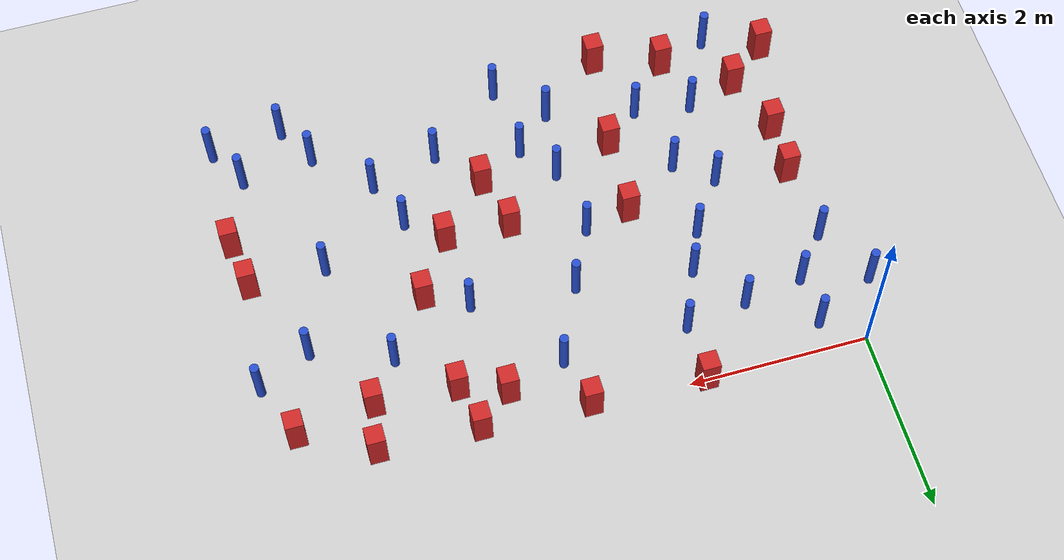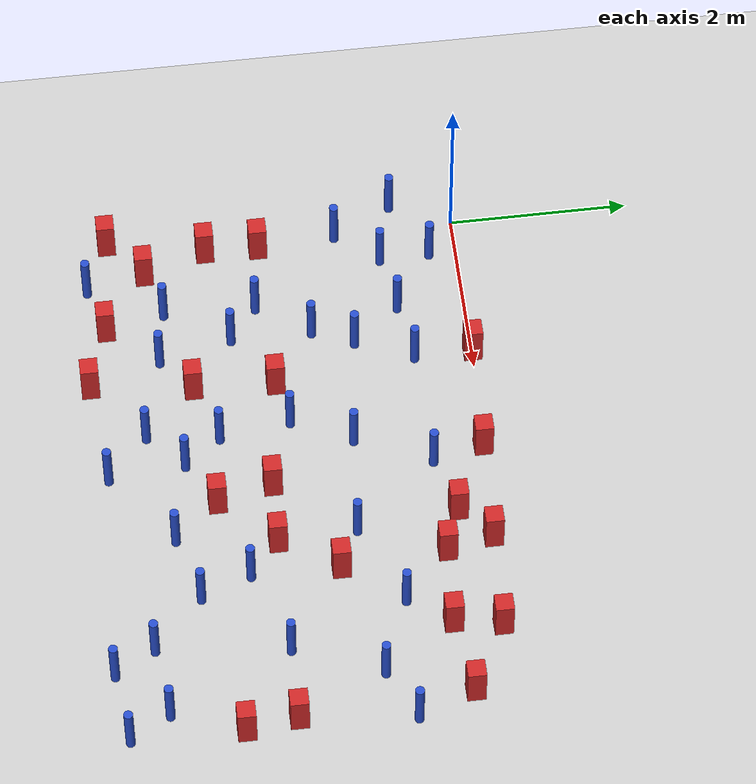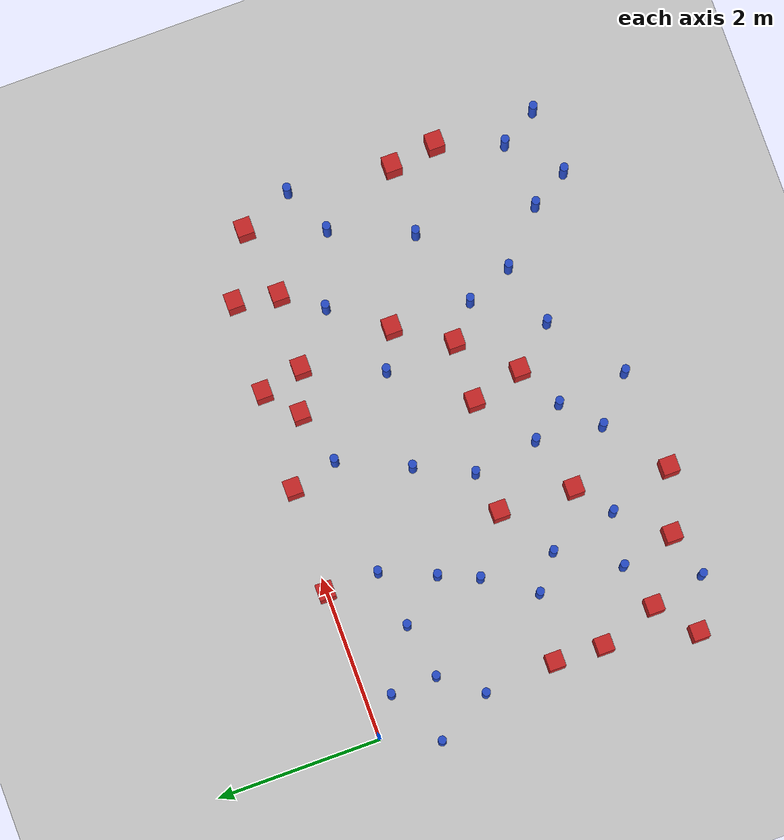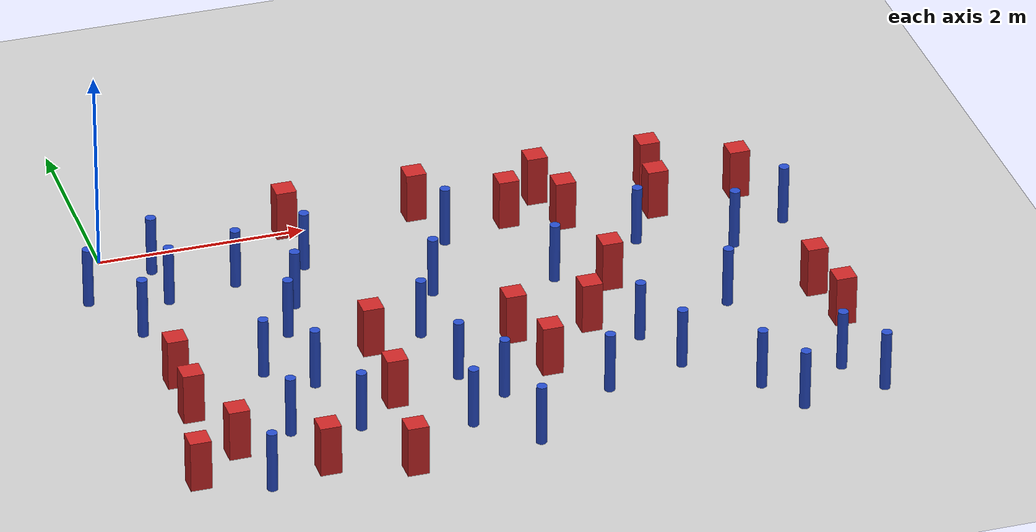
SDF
<sdf version="1.6">
 <world name="default">
  <model name="ground_plane">
   <static>1</static>
   <link name="link">
    <collision name="collision">
     <geometry><plane><normal>0 0 1</normal><size>100 100</size></plane></geometry>
     <surface><friction><ode><mu>100</mu><mu2>50</mu2></ode></friction></surface>
    </collision>
    <visual name="visual">
     <cast_shadows>0</cast_shadows>
     <geometry><plane><normal>0 0 1</normal><size>100 100</size></plane></geometry>
     <material>
      <ambient>1.0 1.0 1.0 1.0</ambient>
      <diffuse>0.8 0.8 0.8 1.0</diffuse>
      <specular>0.01 0.01 0.01 1.000000</specular>
     </material>
    </visual>
   </link>
  </model>
  <model name="NamedLocations">
   <static>true</static>
   <link name="DefaultStart"><pose>8.5 0 0 0 0 3.14</pose></link>
  </model>
  <model name="square_post_obstacle0">
   <static>true</static>
   <pose>3.33551158871 -2.38753182375 8.22691968438e-08 7.2212513382e-06 -7.54495500217e-07 2.29674213826e-05</pose>
   <link name="link">
    <pose>0 0 0.25 0 -0 0</pose>
    <inertial>
     <mass>100</mass>
     <inertia>
      <ixx>0.166667</ixx>
      <ixy>0</ixy>
      <ixz>0</ixz>
      <iyy>0.166667</iyy>
      <iyz>0</iyz>
      <izz>0.166667</izz>
     </inertia>
    </inertial>
    <collision name="collision"><geometry><box><size>.2 .2 .5</size></box></geometry></collision>
    <visual name="visual">
     <geometry><box><size>.2 .2 .5</size></box></geometry>
     <material>
      <script><name>Gazebo/Red</name><uri>file://media/materials/scripts/gazebo.material</uri></script>
     </material>
    </visual>
   </link>
  </model>
  <model name="square_post_obstacle1">
   <static>true</static>
   <pose>6.35539613358 -2.98623689507 8.22691968438e-08 7.2212513382e-06 -7.54495500217e-07 2.29674213826e-05</pose>
   <link name="link">
    <pose>0 0 0.25 0 -0 0</pose>
    <inertial>
     <mass>100</mass>
     <inertia>
      <ixx>0.166667</ixx>
      <ixy>0</ixy>
      <ixz>0</ixz>
      <iyy>0.166667</iyy>
      <iyz>0</iyz>
      <izz>0.166667</izz>
     </inertia>
    </inertial>
    <collision name="collision"><geometry><box><size>.2 .2 .5</size></box></geometry></collision>
    <visual name="visual">
     <geometry><box><size>.2 .2 .5</size></box></geometry>
     <material>
      <script><name>Gazebo/Red</name><uri>file://media/materials/scripts/gazebo.material</uri></script>
     </material>
    </visual>
   </link>
  </model>
  <model name="pole_obstacle6">
   <static>true</static>
   <pose>0.951202149608 -2.32949687447 2.88873142074e-08 -9.90536689802e-09 4.6021994899e-07 -1.2096599496e-07</pose>
   <link name="link">
    <pose>0 0 0.3 0 -0 0</pose>
    <inertial>
     <mass>1</mass>
     <inertia><ixx>0.145833</ixx><ixy>0</ixy><ixz>0</ixz><iyy>0.145833</iyy><iyz>0</iyz><izz>0.125</izz></inertia>
    </inertial>
    <collision name="collision">
     <geometry><cylinder><radius>0.05</radius><length>.6</length></cylinder></geometry>
    </collision>
    <visual name="visual">
     <geometry><cylinder><radius>0.05</radius><length>.6</length></cylinder></geometry>
     <material>
      <script><name>Gazebo/Blue</name><uri>file://media/materials/scripts/gazebo.material</uri></script>
     </material>
    </visual>
   </link>
  </model>
  <model name="pole_obstacle16">
   <static>true</static>
   <pose>4.67616366562 -3.29924647182 2.88873142074e-08 -9.90536690245e-09 4.6021994898e-07 -1.20965994966e-07</pose>
   <link name="link">
    <pose>0 0 0.3 0 -0 0</pose>
    <inertial>
     <mass>1</mass>
     <inertia><ixx>0.145833</ixx><ixy>0</ixy><ixz>0</ixz><iyy>0.145833</iyy><iyz>0</iyz><izz>0.125</izz></inertia>
    </inertial>
    <collision name="collision">
     <geometry><cylinder><radius>0.05</radius><length>.6</length></cylinder></geometry>
    </collision>
    <visual name="visual">
     <geometry><cylinder><radius>0.05</radius><length>.6</length></cylinder></geometry>
     <material>
      <script><name>Gazebo/Blue</name><uri>file://media/materials/scripts/gazebo.material</uri></script>
     </material>
    </visual>
   </link>
  </model>
  <model name="square_post_obstacle13">
   <static>true</static>
   <pose>3.08221346266 -0.0451196564456 8.22691968438e-08 7.2212513382e-06 -7.54495500217e-07 2.29674213826e-05</pose>
   <link name="link">
    <pose>0 0 0.25 0 -0 0</pose>
    <inertial>
     <mass>100</mass>
     <inertia>
      <ixx>0.166667</ixx>
      <ixy>0</ixy>
      <ixz>0</ixz>
      <iyy>0.166667</iyy>
      <iyz>0</iyz>
      <izz>0.166667</izz>
     </inertia>
    </inertial>
    <collision name="collision"><geometry><box><size>.2 .2 .5</size></box></geometry></collision>
    <visual name="visual">
     <geometry><box><size>.2 .2 .5</size></box></geometry>
     <material>
      <script><name>Gazebo/Red</name><uri>file://media/materials/scripts/gazebo.material</uri></script>
     </material>
    </visual>
   </link>
  </model>
  <model name="pole_obstacle31">
   <static>true</static>
   <pose>1.55537287279 -3.45770355366 2.88873142074e-08 -9.90536689791e-09 4.6021994899e-07 -1.20965994959e-07</pose>
   <link name="link">
    <pose>0 0 0.3 0 -0 0</pose>
    <inertial>
     <mass>1</mass>
     <inertia><ixx>0.145833</ixx><ixy>0</ixy><ixz>0</ixz><iyy>0.145833</iyy><iyz>0</iyz><izz>0.125</izz></inertia>
    </inertial>
    <collision name="collision">
     <geometry><cylinder><radius>0.05</radius><length>.6</length></cylinder></geometry>
    </collision>
    <visual name="visual">
     <geometry><cylinder><radius>0.05</radius><length>.6</length></cylinder></geometry>
     <material>
      <script><name>Gazebo/Blue</name><uri>file://media/materials/scripts/gazebo.material</uri></script>
     </material>
    </visual>
   </link>
  </model>
  <model name="pole_obstacle32">
   <static>true</static>
   <pose>6.33286366104 -4.20859407425 2.88873142074e-08 -9.90536690842e-09 4.60219948965e-07 -1.20965994976e-07</pose>
   <link name="link">
    <pose>0 0 0.3 0 -0 0</pose>
    <inertial>
     <mass>1</mass>
     <inertia><ixx>0.145833</ixx><ixy>0</ixy><ixz>0</ixz><iyy>0.145833</iyy><iyz>0</iyz><izz>0.125</izz></inertia>
    </inertial>
    <collision name="collision">
     <geometry><cylinder><radius>0.05</radius><length>.6</length></cylinder></geometry>
    </collision>
    <visual name="visual">
     <geometry><cylinder><radius>0.05</radius><length>.6</length></cylinder></geometry>
     <material>
      <script><name>Gazebo/Blue</name><uri>file://media/materials/scripts/gazebo.material</uri></script>
     </material>
    </visual>
   </link>
  </model>
  <model name="pole_obstacle34">
   <static>true</static>
   <pose>2.52904070204 -2.10784419586 2.88873142074e-08 -9.90536690232e-09 4.6021994898e-07 -1.20965994968e-07</pose>
   <link name="link">
    <pose>0 0 0.3 0 -0 0</pose>
    <inertial>
     <mass>1</mass>
     <inertia><ixx>0.145833</ixx><ixy>0</ixy><ixz>0</ixz><iyy>0.145833</iyy><iyz>0</iyz><izz>0.125</izz></inertia>
    </inertial>
    <collision name="collision">
     <geometry><cylinder><radius>0.05</radius><length>.6</length></cylinder></geometry>
    </collision>
    <visual name="visual">
     <geometry><cylinder><radius>0.05</radius><length>.6</length></cylinder></geometry>
     <material>
      <script><name>Gazebo/Blue</name><uri>file://media/materials/scripts/gazebo.material</uri></script>
     </material>
    </visual>
   </link>
  </model>
  <model name="pole_obstacle37">
   <static>true</static>
   <pose>4.01068466594 -1.53768718347 2.88873142074e-08 -9.90536692145e-09 4.60219948935e-07 -1.20965994986e-07</pose>
   <link name="link">
    <pose>0 0 0.3 0 -0 0</pose>
    <inertial>
     <mass>1</mass>
     <inertia><ixx>0.145833</ixx><ixy>0</ixy><ixz>0</ixz><iyy>0.145833</iyy><iyz>0</iyz><izz>0.125</izz></inertia>
    </inertial>
    <collision name="collision">
     <geometry><cylinder><radius>0.05</radius><length>.6</length></cylinder></geometry>
    </collision>
    <visual name="visual">
     <geometry><cylinder><radius>0.05</radius><length>.6</length></cylinder></geometry>
     <material>
      <script><name>Gazebo/Blue</name><uri>file://media/materials/scripts/gazebo.material</uri></script>
     </material>
    </visual>
   </link>
  </model>
  <model name="pole_obstacle42">
   <static>true</static>
   <pose>4.45460761565 -2.74152419079 2.88873142074e-08 -9.90536690245e-09 4.6021994898e-07 -1.20965994966e-07</pose>
   <link name="link">
    <pose>0 0 0.3 0 -0 0</pose>
    <inertial>
     <mass>1</mass>
     <inertia><ixx>0.145833</ixx><ixy>0</ixy><ixz>0</ixz><iyy>0.145833</iyy><iyz>0</iyz><izz>0.125</izz></inertia>
    </inertial>
    <collision name="collision">
     <geometry><cylinder><radius>0.05</radius><length>.6</length></cylinder></geometry>
    </collision>
    <visual name="visual">
     <geometry><cylinder><radius>0.05</radius><length>.6</length></cylinder></geometry>
     <material>
      <script><name>Gazebo/Blue</name><uri>file://media/materials/scripts/gazebo.material</uri></script>
     </material>
    </visual>
   </link>
  </model>
  <model name="square_post_obstacle35">
   <static>true</static>
   <pose>0.364758175103 -3.52384070344 8.22691968438e-08 7.2212513382e-06 -7.54495500217e-07 2.29674213826e-05</pose>
   <link name="link">
    <pose>0 0 0.25 0 -0 0</pose>
    <inertial>
     <mass>100</mass>
     <inertia>
      <ixx>0.166667</ixx>
      <ixy>0</ixy>
      <ixz>0</ixz>
      <iyy>0.166667</iyy>
      <iyz>0</iyz>
      <izz>0.166667</izz>
     </inertia>
    </inertial>
    <collision name="collision"><geometry><box><size>.2 .2 .5</size></box></geometry></collision>
    <visual name="visual">
     <geometry><box><size>.2 .2 .5</size></box></geometry>
     <material>
      <script><name>Gazebo/Red</name><uri>file://media/materials/scripts/gazebo.material</uri></script>
     </material>
    </visual>
   </link>
  </model>
  <model name="square_post_obstacle36">
   <static>true</static>
   <pose>6.15191301375 -0.540406269946 8.22691968438e-08 7.2212513382e-06 -7.54495500217e-07 2.29674213826e-05</pose>
   <link name="link">
    <pose>0 0 0.25 0 -0 0</pose>
    <inertial>
     <mass>100</mass>
     <inertia>
      <ixx>0.166667</ixx>
      <ixy>0</ixy>
      <ixz>0</ixz>
      <iyy>0.166667</iyy>
      <iyz>0</iyz>
      <izz>0.166667</izz>
     </inertia>
    </inertial>
    <collision name="collision"><geometry><box><size>.2 .2 .5</size></box></geometry></collision>
    <visual name="visual">
     <geometry><box><size>.2 .2 .5</size></box></geometry>
     <material>
      <script><name>Gazebo/Red</name><uri>file://media/materials/scripts/gazebo.material</uri></script>
     </material>
    </visual>
   </link>
  </model>
  <model name="pole_obstacle52">
   <static>true</static>
   <pose>5.52119731258 -4.29696011085 2.88873142074e-08 -9.90536690842e-09 4.60219948965e-07 -1.20965994976e-07</pose>
   <link name="link">
    <pose>0 0 0.3 0 -0 0</pose>
    <inertial>
     <mass>1</mass>
     <inertia><ixx>0.145833</ixx><ixy>0</ixy><ixz>0</ixz><iyy>0.145833</iyy><iyz>0</iyz><izz>0.125</izz></inertia>
    </inertial>
    <collision name="collision">
     <geometry><cylinder><radius>0.05</radius><length>.6</length></cylinder></geometry>
    </collision>
    <visual name="visual">
     <geometry><cylinder><radius>0.05</radius><length>.6</length></cylinder></geometry>
     <material>
      <script><name>Gazebo/Blue</name><uri>file://media/materials/scripts/gazebo.material</uri></script>
     </material>
    </visual>
   </link>
  </model>
  <model name="pole_obstacle53">
   <static>true</static>
   <pose>1.12741963895 -0.750275368796 2.88873142074e-08 -9.90536689692e-09 4.60219948993e-07 -1.20965994958e-07</pose>
   <link name="link">
    <pose>0 0 0.3 0 -0 0</pose>
    <inertial>
     <mass>1</mass>
     <inertia><ixx>0.145833</ixx><ixy>0</ixy><ixz>0</ixz><iyy>0.145833</iyy><iyz>0</iyz><izz>0.125</izz></inertia>
    </inertial>
    <collision name="collision">
     <geometry><cylinder><radius>0.05</radius><length>.6</length></cylinder></geometry>
    </collision>
    <visual name="visual">
     <geometry><cylinder><radius>0.05</radius><length>.6</length></cylinder></geometry>
     <material>
      <script><name>Gazebo/Blue</name><uri>file://media/materials/scripts/gazebo.material</uri></script>
     </material>
    </visual>
   </link>
  </model>
  <model name="square_post_obstacle43">
   <static>true</static>
   <pose>1.82633397177 -4.25006976093 8.22691968438e-08 7.2212513382e-06 -7.54495500217e-07 2.29674213826e-05</pose>
   <link name="link">
    <pose>0 0 0.25 0 -0 0</pose>
    <inertial>
     <mass>100</mass>
     <inertia>
      <ixx>0.166667</ixx>
      <ixy>0</ixy>
      <ixz>0</ixz>
      <iyy>0.166667</iyy>
      <iyz>0</iyz>
      <izz>0.166667</izz>
     </inertia>
    </inertial>
    <collision name="collision"><geometry><box><size>.2 .2 .5</size></box></geometry></collision>
    <visual name="visual">
     <geometry><box><size>.2 .2 .5</size></box></geometry>
     <material>
      <script><name>Gazebo/Red</name><uri>file://media/materials/scripts/gazebo.material</uri></script>
     </material>
    </visual>
   </link>
  </model>
  <model name="pole_obstacle56">
   <static>true</static>
   <pose>5.42401776654 -2.41287357267 2.88873142074e-08 -9.90536690245e-09 4.6021994898e-07 -1.20965994966e-07</pose>
   <link name="link">
    <pose>0 0 0.3 0 -0 0</pose>
    <inertial>
     <mass>1</mass>
     <inertia><ixx>0.145833</ixx><ixy>0</ixy><ixz>0</ixz><iyy>0.145833</iyy><iyz>0</iyz><izz>0.125</izz></inertia>
    </inertial>
    <collision name="collision">
     <geometry><cylinder><radius>0.05</radius><length>.6</length></cylinder></geometry>
    </collision>
    <visual name="visual">
     <geometry><cylinder><radius>0.05</radius><length>.6</length></cylinder></geometry>
     <material>
      <script><name>Gazebo/Blue</name><uri>file://media/materials/scripts/gazebo.material</uri></script>
     </material>
    </visual>
   </link>
  </model>
  <model name="pole_obstacle59">
   <static>true</static>
   <pose>3.22169595752 -0.608673517969 2.88873142074e-08 -9.90536689285e-09 4.60219949002e-07 -1.20965994953e-07</pose>
   <link name="link">
    <pose>0 0 0.3 0 -0 0</pose>
    <inertial>
     <mass>1</mass>
     <inertia><ixx>0.145833</ixx><ixy>0</ixy><ixz>0</ixz><iyy>0.145833</iyy><iyz>0</iyz><izz>0.125</izz></inertia>
    </inertial>
    <collision name="collision">
     <geometry><cylinder><radius>0.05</radius><length>.6</length></cylinder></geometry>
    </collision>
    <visual name="visual">
     <geometry><cylinder><radius>0.05</radius><length>.6</length></cylinder></geometry>
     <material>
      <script><name>Gazebo/Blue</name><uri>file://media/materials/scripts/gazebo.material</uri></script>
     </material>
    </visual>
   </link>
  </model>
  <model name="pole_obstacle61">
   <static>true</static>
   <pose>-0.27595674886 -0.673782790288 2.88873142074e-08 -9.90536690065e-09 4.60219948984e-07 -1.20965994964e-07</pose>
   <link name="link">
    <pose>0 0 0.3 0 -0 0</pose>
    <inertial>
     <mass>1</mass>
     <inertia><ixx>0.145833</ixx><ixy>0</ixy><ixz>0</ixz><iyy>0.145833</iyy><iyz>0</iyz><izz>0.125</izz></inertia>
    </inertial>
    <collision name="collision">
     <geometry><cylinder><radius>0.05</radius><length>.6</length></cylinder></geometry>
    </collision>
    <visual name="visual">
     <geometry><cylinder><radius>0.05</radius><length>.6</length></cylinder></geometry>
     <material>
      <script><name>Gazebo/Blue</name><uri>file://media/materials/scripts/gazebo.material</uri></script>
     </material>
    </visual>
   </link>
  </model>
  <model name="pole_obstacle65">
   <static>true</static>
   <pose>5.2620840132 -3.84931192331 2.88873142074e-08 -9.90536690245e-09 4.6021994898e-07 -1.20965994966e-07</pose>
   <link name="link">
    <pose>0 0 0.3 0 -0 0</pose>
    <inertial>
     <mass>1</mass>
     <inertia><ixx>0.145833</ixx><ixy>0</ixy><ixz>0</ixz><iyy>0.145833</iyy><iyz>0</iyz><izz>0.125</izz></inertia>
    </inertial>
    <collision name="collision">
     <geometry><cylinder><radius>0.05</radius><length>.6</length></cylinder></geometry>
    </collision>
    <visual name="visual">
     <geometry><cylinder><radius>0.05</radius><length>.6</length></cylinder></geometry>
     <material>
      <script><name>Gazebo/Blue</name><uri>file://media/materials/scripts/gazebo.material</uri></script>
     </material>
    </visual>
   </link>
  </model>
  <model name="square_post_obstacle53">
   <static>true</static>
   <pose>3.88517803268 -0.424306347655 8.22691968438e-08 7.2212513382e-06 -7.54495500217e-07 2.29674213826e-05</pose>
   <link name="link">
    <pose>0 0 0.25 0 -0 0</pose>
    <inertial>
     <mass>100</mass>
     <inertia>
      <ixx>0.166667</ixx>
      <ixy>0</ixy>
      <ixz>0</ixz>
      <iyy>0.166667</iyy>
      <iyz>0</iyz>
      <izz>0.166667</izz>
     </inertia>
    </inertial>
    <collision name="collision"><geometry><box><size>.2 .2 .5</size></box></geometry></collision>
    <visual name="visual">
     <geometry><box><size>.2 .2 .5</size></box></geometry>
     <material>
      <script><name>Gazebo/Red</name><uri>file://media/materials/scripts/gazebo.material</uri></script>
     </material>
    </visual>
   </link>
  </model>
  <model name="pole_obstacle82">
   <static>true</static>
   <pose>5.82028205875 -1.45010926206 2.88873142074e-08 -9.90536689445e-09 4.60219948999e-07 -1.20965994956e-07</pose>
   <link name="link">
    <pose>0 0 0.3 0 -0 0</pose>
    <inertial>
     <mass>1</mass>
     <inertia><ixx>0.145833</ixx><ixy>0</ixy><ixz>0</ixz><iyy>0.145833</iyy><iyz>0</iyz><izz>0.125</izz></inertia>
    </inertial>
    <collision name="collision">
     <geometry><cylinder><radius>0.05</radius><length>.6</length></cylinder></geometry>
    </collision>
    <visual name="visual">
     <geometry><cylinder><radius>0.05</radius><length>.6</length></cylinder></geometry>
     <material>
      <script><name>Gazebo/Blue</name><uri>file://media/materials/scripts/gazebo.material</uri></script>
     </material>
    </visual>
   </link>
  </model>
  <model name="square_post_obstacle71">
   <static>true</static>
   <pose>0.128931436518 -2.81735122574 8.22691968438e-08 7.2212513382e-06 -7.54495500217e-07 2.29674213826e-05</pose>
   <link name="link">
    <pose>0 0 0.25 0 -0 0</pose>
    <inertial>
     <mass>100</mass>
     <inertia>
      <ixx>0.166667</ixx>
      <ixy>0</ixy>
      <ixz>0</ixz>
      <iyy>0.166667</iyy>
      <iyz>0</iyz>
      <izz>0.166667</izz>
     </inertia>
    </inertial>
    <collision name="collision"><geometry><box><size>.2 .2 .5</size></box></geometry></collision>
    <visual name="visual">
     <geometry><box><size>.2 .2 .5</size></box></geometry>
     <material>
      <script><name>Gazebo/Red</name><uri>file://media/materials/scripts/gazebo.material</uri></script>
     </material>
    </visual>
   </link>
  </model>
  <model name="square_post_obstacle72">
   <static>true</static>
   <pose>1.07809451744 -4.01339061702 8.22691968438e-08 7.2212513382e-06 -7.54495500217e-07 2.29674213826e-05</pose>
   <link name="link">
    <pose>0 0 0.25 0 -0 0</pose>
    <inertial>
     <mass>100</mass>
     <inertia>
      <ixx>0.166667</ixx>
      <ixy>0</ixy>
      <ixz>0</ixz>
      <iyy>0.166667</iyy>
      <iyz>0</iyz>
      <izz>0.166667</izz>
     </inertia>
    </inertial>
    <collision name="collision"><geometry><box><size>.2 .2 .5</size></box></geometry></collision>
    <visual name="visual">
     <geometry><box><size>.2 .2 .5</size></box></geometry>
     <material>
      <script><name>Gazebo/Red</name><uri>file://media/materials/scripts/gazebo.material</uri></script>
     </material>
    </visual>
   </link>
  </model>
  <model name="square_post_obstacle77">
   <static>true</static>
   <pose>3.49440345341 -3.00782578064 8.22691968438e-08 7.2212513382e-06 -7.54495500217e-07 2.29674213826e-05</pose>
   <link name="link">
    <pose>0 0 0.25 0 -0 0</pose>
    <inertial>
     <mass>100</mass>
     <inertia>
      <ixx>0.166667</ixx>
      <ixy>0</ixy>
      <ixz>0</ixz>
      <iyy>0.166667</iyy>
      <iyz>0</iyz>
      <izz>0.166667</izz>
     </inertia>
    </inertial>
    <collision name="collision"><geometry><box><size>.2 .2 .5</size></box></geometry></collision>
    <visual name="visual">
     <geometry><box><size>.2 .2 .5</size></box></geometry>
     <material>
      <script><name>Gazebo/Red</name><uri>file://media/materials/scripts/gazebo.material</uri></script>
     </material>
    </visual>
   </link>
  </model>
  <model name="square_post_obstacle83">
   <static>true</static>
   <pose>-0.103212736584 -3.91004335331 8.22691968438e-08 7.22125133819e-06 -7.54495500217e-07 2.29674213826e-05</pose>
   <link name="link">
    <pose>0 0 0.25 0 -0 0</pose>
    <inertial>
     <mass>100</mass>
     <inertia>
      <ixx>0.166667</ixx>
      <ixy>0</ixy>
      <ixz>0</ixz>
      <iyy>0.166667</iyy>
      <iyz>0</iyz>
      <izz>0.166667</izz>
     </inertia>
    </inertial>
    <collision name="collision"><geometry><box><size>.2 .2 .5</size></box></geometry></collision>
    <visual name="visual">
     <geometry><box><size>.2 .2 .5</size></box></geometry>
     <material>
      <script><name>Gazebo/Red</name><uri>file://media/materials/scripts/gazebo.material</uri></script>
     </material>
    </visual>
   </link>
  </model>
  <model name="square_post_obstacle90">
   <static>true</static>
   <pose>5.38146638574 -0.140066428474 8.22691968438e-08 7.2212513382e-06 -7.54495500217e-07 2.29674213826e-05</pose>
   <link name="link">
    <pose>0 0 0.25 0 -0 0</pose>
    <inertial>
     <mass>100</mass>
     <inertia>
      <ixx>0.166667</ixx>
      <ixy>0</ixy>
      <ixz>0</ixz>
      <iyy>0.166667</iyy>
      <iyz>0</iyz>
      <izz>0.166667</izz>
     </inertia>
    </inertial>
    <collision name="collision"><geometry><box><size>.2 .2 .5</size></box></geometry></collision>
    <visual name="visual">
     <geometry><box><size>.2 .2 .5</size></box></geometry>
     <material>
      <script><name>Gazebo/Red</name><uri>file://media/materials/scripts/gazebo.material</uri></script>
     </material>
    </visual>
   </link>
  </model>
  <model name="pole_obstacle101">
   <static>true</static>
   <pose>1.35417675171 -2.64316327853 2.88873142074e-08 -9.90536689791e-09 4.6021994899e-07 -1.20965994959e-07</pose>
   <link name="link">
    <pose>0 0 0.3 0 -0 0</pose>
    <inertial>
     <mass>1</mass>
     <inertia><ixx>0.145833</ixx><ixy>0</ixy><ixz>0</ixz><iyy>0.145833</iyy><iyz>0</iyz><izz>0.125</izz></inertia>
    </inertial>
    <collision name="collision">
     <geometry><cylinder><radius>0.05</radius><length>.6</length></cylinder></geometry>
    </collision>
    <visual name="visual">
     <geometry><cylinder><radius>0.05</radius><length>.6</length></cylinder></geometry>
     <material>
      <script><name>Gazebo/Blue</name><uri>file://media/materials/scripts/gazebo.material</uri></script>
     </material>
    </visual>
   </link>
  </model>
  <model name="pole_obstacle106">
   <static>true</static>
   <pose>1.82605685001 -0.641971774942 2.88873142074e-08 -9.90536689692e-09 4.60219948993e-07 -1.20965994958e-07</pose>
   <link name="link">
    <pose>0 0 0.3 0 -0 0</pose>
    <inertial>
     <mass>1</mass>
     <inertia><ixx>0.145833</ixx><ixy>0</ixy><ixz>0</ixz><iyy>0.145833</iyy><iyz>0</iyz><izz>0.125</izz></inertia>
    </inertial>
    <collision name="collision">
     <geometry><cylinder><radius>0.05</radius><length>.6</length></cylinder></geometry>
    </collision>
    <visual name="visual">
     <geometry><cylinder><radius>0.05</radius><length>.6</length></cylinder></geometry>
     <material>
      <script><name>Gazebo/Blue</name><uri>file://media/materials/scripts/gazebo.material</uri></script>
     </material>
    </visual>
   </link>
  </model>
  <model name="square_post_obstacle106">
   <static>true</static>
   <pose>1.8173069041 0.00669972680373 8.22691968438e-08 7.2212513382e-06 -7.54495500217e-07 2.29674213826e-05</pose>
   <link name="link">
    <pose>0 0 0.25 0 -0 0</pose>
    <inertial>
     <mass>100</mass>
     <inertia>
      <ixx>0.166667</ixx>
      <ixy>0</ixy>
      <ixz>0</ixz>
      <iyy>0.166667</iyy>
      <iyz>0</iyz>
      <izz>0.166667</izz>
     </inertia>
    </inertial>
    <collision name="collision"><geometry><box><size>.2 .2 .5</size></box></geometry></collision>
    <visual name="visual">
     <geometry><box><size>.2 .2 .5</size></box></geometry>
     <material>
      <script><name>Gazebo/Red</name><uri>file://media/materials/scripts/gazebo.material</uri></script>
     </material>
    </visual>
   </link>
  </model>
  <model name="pole_obstacle116">
   <static>true</static>
   <pose>6.40770342062 -1.16925925599 2.88873142074e-08 -9.90536689445e-09 4.60219948999e-07 -1.20965994956e-07</pose>
   <link name="link">
    <pose>0 0 0.3 0 -0 0</pose>
    <inertial>
     <mass>1</mass>
     <inertia><ixx>0.145833</ixx><ixy>0</ixy><ixz>0</ixz><iyy>0.145833</iyy><iyz>0</iyz><izz>0.125</izz></inertia>
    </inertial>
    <collision name="collision">
     <geometry><cylinder><radius>0.05</radius><length>.6</length></cylinder></geometry>
    </collision>
    <visual name="visual">
     <geometry><cylinder><radius>0.05</radius><length>.6</length></cylinder></geometry>
     <material>
      <script><name>Gazebo/Blue</name><uri>file://media/materials/scripts/gazebo.material</uri></script>
     </material>
    </visual>
   </link>
  </model>
  <model name="pole_obstacle117">
   <static>true</static>
   <pose>2.54522418877 -3.6971798644 2.88873142074e-08 -9.90536690232e-09 4.6021994898e-07 -1.20965994968e-07</pose>
   <link name="link">
    <pose>0 0 0.3 0 -0 0</pose>
    <inertial>
     <mass>1</mass>
     <inertia><ixx>0.145833</ixx><ixy>0</ixy><ixz>0</ixz><iyy>0.145833</iyy><iyz>0</iyz><izz>0.125</izz></inertia>
    </inertial>
    <collision name="collision">
     <geometry><cylinder><radius>0.05</radius><length>.6</length></cylinder></geometry>
    </collision>
    <visual name="visual">
     <geometry><cylinder><radius>0.05</radius><length>.6</length></cylinder></geometry>
     <material>
      <script><name>Gazebo/Blue</name><uri>file://media/materials/scripts/gazebo.material</uri></script>
     </material>
    </visual>
   </link>
  </model>
  <model name="pole_obstacle125">
   <static>true</static>
   <pose>0.508688991058 -4.17752783334 2.88873142074e-08 -9.90536689714e-09 4.60219948992e-07 -1.20965994957e-07</pose>
   <link name="link">
    <pose>0 0 0.3 0 -0 0</pose>
    <inertial>
     <mass>1</mass>
     <inertia><ixx>0.145833</ixx><ixy>0</ixy><ixz>0</ixz><iyy>0.145833</iyy><iyz>0</iyz><izz>0.125</izz></inertia>
    </inertial>
    <collision name="collision">
     <geometry><cylinder><radius>0.05</radius><length>.6</length></cylinder></geometry>
    </collision>
    <visual name="visual">
     <geometry><cylinder><radius>0.05</radius><length>.6</length></cylinder></geometry>
     <material>
      <script><name>Gazebo/Blue</name><uri>file://media/materials/scripts/gazebo.material</uri></script>
     </material>
    </visual>
   </link>
  </model>
  <model name="square_post_obstacle122">
   <static>true</static>
   <pose>4.06737726352 -2.40886687249 8.22691968438e-08 7.2212513382e-06 -7.54495500217e-07 2.29674213826e-05</pose>
   <link name="link">
    <pose>0 0 0.25 0 -0 0</pose>
    <inertial>
     <mass>100</mass>
     <inertia>
      <ixx>0.166667</ixx>
      <ixy>0</ixy>
      <ixz>0</ixz>
      <iyy>0.166667</iyy>
      <iyz>0</iyz>
      <izz>0.166667</izz>
     </inertia>
    </inertial>
    <collision name="collision"><geometry><box><size>.2 .2 .5</size></box></geometry></collision>
    <visual name="visual">
     <geometry><box><size>.2 .2 .5</size></box></geometry>
     <material>
      <script><name>Gazebo/Red</name><uri>file://media/materials/scripts/gazebo.material</uri></script>
     </material>
    </visual>
   </link>
  </model>
  <model name="pole_obstacle128">
   <static>true</static>
   <pose>2.64864085894 -2.89749312352 2.88873142074e-08 -9.90536690232e-09 4.6021994898e-07 -1.20965994968e-07</pose>
   <link name="link">
    <pose>0 0 0.3 0 -0 0</pose>
    <inertial>
     <mass>1</mass>
     <inertia><ixx>0.145833</ixx><ixy>0</ixy><ixz>0</ixz><iyy>0.145833</iyy><iyz>0</iyz><izz>0.125</izz></inertia>
    </inertial>
    <collision name="collision">
     <geometry><cylinder><radius>0.05</radius><length>.6</length></cylinder></geometry>
    </collision>
    <visual name="visual">
     <geometry><cylinder><radius>0.05</radius><length>.6</length></cylinder></geometry>
     <material>
      <script><name>Gazebo/Blue</name><uri>file://media/materials/scripts/gazebo.material</uri></script>
     </material>
    </visual>
   </link>
  </model>
  <model name="square_post_obstacle127">
   <static>true</static>
   <pose>1.97132980168 -3.12334967399 8.22691968438e-08 7.2212513382e-06 -7.54495500217e-07 2.29674213826e-05</pose>
   <link name="link">
    <pose>0 0 0.25 0 -0 0</pose>
    <inertial>
     <mass>100</mass>
     <inertia>
      <ixx>0.166667</ixx>
      <ixy>0</ixy>
      <ixz>0</ixz>
      <iyy>0.166667</iyy>
      <iyz>0</iyz>
      <izz>0.166667</izz>
     </inertia>
    </inertial>
    <collision name="collision"><geometry><box><size>.2 .2 .5</size></box></geometry></collision>
    <visual name="visual">
     <geometry><box><size>.2 .2 .5</size></box></geometry>
     <material>
      <script><name>Gazebo/Red</name><uri>file://media/materials/scripts/gazebo.material</uri></script>
     </material>
    </visual>
   </link>
  </model>
  <model name="pole_obstacle133">
   <static>true</static>
   <pose>0.0712494403127 -1.34078040524 2.88873142074e-08 -9.9053668989e-09 4.60219948988e-07 -1.20965994962e-07</pose>
   <link name="link">
    <pose>0 0 0.3 0 -0 0</pose>
    <inertial>
     <mass>1</mass>
     <inertia><ixx>0.145833</ixx><ixy>0</ixy><ixz>0</ixz><iyy>0.145833</iyy><iyz>0</iyz><izz>0.125</izz></inertia>
    </inertial>
    <collision name="collision">
     <geometry><cylinder><radius>0.05</radius><length>.6</length></cylinder></geometry>
    </collision>
    <visual name="visual">
     <geometry><cylinder><radius>0.05</radius><length>.6</length></cylinder></geometry>
     <material>
      <script><name>Gazebo/Blue</name><uri>file://media/materials/scripts/gazebo.material</uri></script>
     </material>
    </visual>
   </link>
  </model>
  <model name="pole_obstacle136">
   <static>true</static>
   <pose>2.96323227645 -3.30467426033 2.88873142074e-08 -9.90536690232e-09 4.6021994898e-07 -1.20965994968e-07</pose>
   <link name="link">
    <pose>0 0 0.3 0 -0 0</pose>
    <inertial>
     <mass>1</mass>
     <inertia><ixx>0.145833</ixx><ixy>0</ixy><ixz>0</ixz><iyy>0.145833</iyy><iyz>0</iyz><izz>0.125</izz></inertia>
    </inertial>
    <collision name="collision">
     <geometry><cylinder><radius>0.05</radius><length>.6</length></cylinder></geometry>
    </collision>
    <visual name="visual">
     <geometry><cylinder><radius>0.05</radius><length>.6</length></cylinder></geometry>
     <material>
      <script><name>Gazebo/Blue</name><uri>file://media/materials/scripts/gazebo.material</uri></script>
     </material>
    </visual>
   </link>
  </model>
  <model name="square_post_obstacle135">
   <static>true</static>
   <pose>2.01313591042 -2.2147331612 8.22691968438e-08 7.2212513382e-06 -7.54495500217e-07 2.29674213826e-05</pose>
   <link name="link">
    <pose>0 0 0.25 0 -0 0</pose>
    <inertial>
     <mass>100</mass>
     <inertia>
      <ixx>0.166667</ixx>
      <ixy>0</ixy>
      <ixz>0</ixz>
      <iyy>0.166667</iyy>
      <iyz>0</iyz>
      <izz>0.166667</izz>
     </inertia>
    </inertial>
    <collision name="collision"><geometry><box><size>.2 .2 .5</size></box></geometry></collision>
    <visual name="visual">
     <geometry><box><size>.2 .2 .5</size></box></geometry>
     <material>
      <script><name>Gazebo/Red</name><uri>file://media/materials/scripts/gazebo.material</uri></script>
     </material>
    </visual>
   </link>
  </model>
  <model name="square_post_obstacle139">
   <static>true</static>
   <pose>4.47462440837 -1.76931225363 8.22691968438e-08 7.2212513382e-06 -7.54495500217e-07 2.29674213826e-05</pose>
   <link name="link">
    <pose>0 0 0.25 0 -0 0</pose>
    <inertial>
     <mass>100</mass>
     <inertia>
      <ixx>0.166667</ixx>
      <ixy>0</ixy>
      <ixz>0</ixz>
      <iyy>0.166667</iyy>
      <iyz>0</iyz>
      <izz>0.166667</izz>
     </inertia>
    </inertial>
    <collision name="collision"><geometry><box><size>.2 .2 .5</size></box></geometry></collision>
    <visual name="visual">
     <geometry><box><size>.2 .2 .5</size></box></geometry>
     <material>
      <script><name>Gazebo/Red</name><uri>file://media/materials/scripts/gazebo.material</uri></script>
     </material>
    </visual>
   </link>
  </model>
  <model name="pole_obstacle149">
   <static>true</static>
   <pose>3.04760911954 -4.15277896738 2.88873142074e-08 -9.90536689859e-09 4.60219948989e-07 -1.20965994961e-07</pose>
   <link name="link">
    <pose>0 0 0.3 0 -0 0</pose>
    <inertial>
     <mass>1</mass>
     <inertia><ixx>0.145833</ixx><ixy>0</ixy><ixz>0</ixz><iyy>0.145833</iyy><iyz>0</iyz><izz>0.125</izz></inertia>
    </inertial>
    <collision name="collision">
     <geometry><cylinder><radius>0.05</radius><length>.6</length></cylinder></geometry>
    </collision>
    <visual name="visual">
     <geometry><cylinder><radius>0.05</radius><length>.6</length></cylinder></geometry>
     <material>
      <script><name>Gazebo/Blue</name><uri>file://media/materials/scripts/gazebo.material</uri></script>
     </material>
    </visual>
   </link>
  </model>
  <model name="square_post_obstacle144">
   <static>true</static>
   <pose>0.146088181113 -2.21856603797 8.22691968438e-08 7.2212513382e-06 -7.54495500217e-07 2.29674213826e-05</pose>
   <link name="link">
    <pose>0 0 0.25 0 -0 0</pose>
    <inertial>
     <mass>100</mass>
     <inertia>
      <ixx>0.166667</ixx>
      <ixy>0</ixy>
      <ixz>0</ixz>
      <iyy>0.166667</iyy>
      <iyz>0</iyz>
      <izz>0.166667</izz>
     </inertia>
    </inertial>
    <collision name="collision"><geometry><box><size>.2 .2 .5</size></box></geometry></collision>
    <visual name="visual">
     <geometry><box><size>.2 .2 .5</size></box></geometry>
     <material>
      <script><name>Gazebo/Red</name><uri>file://media/materials/scripts/gazebo.material</uri></script>
     </material>
    </visual>
   </link>
  </model>
  <model name="pole_obstacle152">
   <static>true</static>
   <pose>2.84691647143 -1.4424339297 2.88873142074e-08 -9.90536689395e-09 4.60219949e-07 -1.20965994953e-07</pose>
   <link name="link">
    <pose>0 0 0.3 0 -0 0</pose>
    <inertial>
     <mass>1</mass>
     <inertia><ixx>0.145833</ixx><ixy>0</ixy><ixz>0</ixz><iyy>0.145833</iyy><iyz>0</iyz><izz>0.125</izz></inertia>
    </inertial>
    <collision name="collision">
     <geometry><cylinder><radius>0.05</radius><length>.6</length></cylinder></geometry>
    </collision>
    <visual name="visual">
     <geometry><cylinder><radius>0.05</radius><length>.6</length></cylinder></geometry>
     <material>
      <script><name>Gazebo/Blue</name><uri>file://media/materials/scripts/gazebo.material</uri></script>
     </material>
    </visual>
   </link>
  </model>
  <model name="pole_obstacle165">
   <static>true</static>
   <pose>1.35550838555 -1.74064083381 2.88873142074e-08 -9.90536689672e-09 4.60219948993e-07 -1.20965994959e-07</pose>
   <link name="link">
    <pose>0 0 0.3 0 -0 0</pose>
    <inertial>
     <mass>1</mass>
     <inertia><ixx>0.145833</ixx><ixy>0</ixy><ixz>0</ixz><iyy>0.145833</iyy><iyz>0</iyz><izz>0.125</izz></inertia>
    </inertial>
    <collision name="collision">
     <geometry><cylinder><radius>0.05</radius><length>.6</length></cylinder></geometry>
    </collision>
    <visual name="visual">
     <geometry><cylinder><radius>0.05</radius><length>.6</length></cylinder></geometry>
     <material>
      <script><name>Gazebo/Blue</name><uri>file://media/materials/scripts/gazebo.material</uri></script>
     </material>
    </visual>
   </link>
  </model>
  <model name="pole_obstacle172">
   <static>true</static>
   <pose>0.433840386754 -0.302950770603 2.88873142074e-08 -9.90536689436e-09 4.60219948999e-07 -1.20965994954e-07</pose>
   <link name="link">
    <pose>0 0 0.3 0 -0 0</pose>
    <inertial>
     <mass>1</mass>
     <inertia><ixx>0.145833</ixx><ixy>0</ixy><ixz>0</ixz><iyy>0.145833</iyy><iyz>0</iyz><izz>0.125</izz></inertia>
    </inertial>
    <collision name="collision">
     <geometry><cylinder><radius>0.05</radius><length>.6</length></cylinder></geometry>
    </collision>
    <visual name="visual">
     <geometry><cylinder><radius>0.05</radius><length>.6</length></cylinder></geometry>
     <material>
      <script><name>Gazebo/Blue</name><uri>file://media/materials/scripts/gazebo.material</uri></script>
     </material>
    </visual>
   </link>
  </model>
  <model name="pole_obstacle175">
   <static>true</static>
   <pose>4.95635492491 -1.12431600774 2.88873142074e-08 -9.90536689445e-09 4.60219948999e-07 -1.20965994956e-07</pose>
   <link name="link">
    <pose>0 0 0.3 0 -0 0</pose>
    <inertial>
     <mass>1</mass>
     <inertia><ixx>0.145833</ixx><ixy>0</ixy><ixz>0</ixz><iyy>0.145833</iyy><iyz>0</iyz><izz>0.125</izz></inertia>
    </inertial>
    <collision name="collision">
     <geometry><cylinder><radius>0.05</radius><length>.6</length></cylinder></geometry>
    </collision>
    <visual name="visual">
     <geometry><cylinder><radius>0.05</radius><length>.6</length></cylinder></geometry>
     <material>
      <script><name>Gazebo/Blue</name><uri>file://media/materials/scripts/gazebo.material</uri></script>
     </material>
    </visual>
   </link>
  </model>
  <model name="pole_obstacle178">
   <static>true</static>
   <pose>3.91186430905 -3.50094566897 2.88873142074e-08 -9.90536690232e-09 4.6021994898e-07 -1.20965994968e-07</pose>
   <link name="link">
    <pose>0 0 0.3 0 -0 0</pose>
    <inertial>
     <mass>1</mass>
     <inertia><ixx>0.145833</ixx><ixy>0</ixy><ixz>0</ixz><iyy>0.145833</iyy><iyz>0</iyz><izz>0.125</izz></inertia>
    </inertial>
    <collision name="collision">
     <geometry><cylinder><radius>0.05</radius><length>.6</length></cylinder></geometry>
    </collision>
    <visual name="visual">
     <geometry><cylinder><radius>0.05</radius><length>.6</length></cylinder></geometry>
     <material>
      <script><name>Gazebo/Blue</name><uri>file://media/materials/scripts/gazebo.material</uri></script>
     </material>
    </visual>
   </link>
  </model>
  <model name="square_post_obstacle178">
   <static>true</static>
   <pose>4.2710056994 -0.0934172410272 8.22691968438e-08 7.2212513382e-06 -7.54495500217e-07 2.29674213826e-05</pose>
   <link name="link">
    <pose>0 0 0.25 0 -0 0</pose>
    <inertial>
     <mass>100</mass>
     <inertia>
      <ixx>0.166667</ixx>
      <ixy>0</ixy>
      <ixz>0</ixz>
      <iyy>0.166667</iyy>
      <iyz>0</iyz>
      <izz>0.166667</izz>
     </inertia>
    </inertial>
    <collision name="collision"><geometry><box><size>.2 .2 .5</size></box></geometry></collision>
    <visual name="visual">
     <geometry><box><size>.2 .2 .5</size></box></geometry>
     <material>
      <script><name>Gazebo/Red</name><uri>file://media/materials/scripts/gazebo.material</uri></script>
     </material>
    </visual>
   </link>
  </model>
  <model name="pole_obstacle180">
   <static>true</static>
   <pose>0.45225657951 -0.864409600387 2.88873142074e-08 -9.90536690133e-09 4.60219948982e-07 -1.20965994965e-07</pose>
   <link name="link">
    <pose>0 0 0.3 0 -0 0</pose>
    <inertial>
     <mass>1</mass>
     <inertia><ixx>0.145833</ixx><ixy>0</ixy><ixz>0</ixz><iyy>0.145833</iyy><iyz>0</iyz><izz>0.125</izz></inertia>
    </inertial>
    <collision name="collision">
     <geometry><cylinder><radius>0.05</radius><length>.6</length></cylinder></geometry>
    </collision>
    <visual name="visual">
     <geometry><cylinder><radius>0.05</radius><length>.6</length></cylinder></geometry>
     <material>
      <script><name>Gazebo/Blue</name><uri>file://media/materials/scripts/gazebo.material</uri></script>
     </material>
    </visual>
   </link>
  </model>
  <model name="square_post_obstacle180">
   <static>true</static>
   <pose>6.27382000781 -2.42325109595 8.22691968438e-08 7.2212513382e-06 -7.54495500217e-07 2.29674213826e-05</pose>
   <link name="link">
    <pose>0 0 0.25 0 -0 0</pose>
    <inertial>
     <mass>100</mass>
     <inertia>
      <ixx>0.166667</ixx>
      <ixy>0</ixy>
      <ixz>0</ixz>
      <iyy>0.166667</iyy>
      <iyz>0</iyz>
      <izz>0.166667</izz>
     </inertia>
    </inertial>
    <collision name="collision"><geometry><box><size>.2 .2 .5</size></box></geometry></collision>
    <visual name="visual">
     <geometry><box><size>.2 .2 .5</size></box></geometry>
     <material>
      <script><name>Gazebo/Red</name><uri>file://media/materials/scripts/gazebo.material</uri></script>
     </material>
    </visual>
   </link>
  </model>
  <model name="square_post_obstacle181">
   <static>true</static>
   <pose>4.3897430247 -0.608503138777 8.22691968438e-08 7.2212513382e-06 -7.54495500217e-07 2.29674213826e-05</pose>
   <link name="link">
    <pose>0 0 0.25 0 -0 0</pose>
    <inertial>
     <mass>100</mass>
     <inertia>
      <ixx>0.166667</ixx>
      <ixy>0</ixy>
      <ixz>0</ixz>
      <iyy>0.166667</iyy>
      <iyz>0</iyz>
      <izz>0.166667</izz>
     </inertia>
    </inertial>
    <collision name="collision"><geometry><box><size>.2 .2 .5</size></box></geometry></collision>
    <visual name="visual">
     <geometry><box><size>.2 .2 .5</size></box></geometry>
     <material>
      <script><name>Gazebo/Red</name><uri>file://media/materials/scripts/gazebo.material</uri></script>
     </material>
    </visual>
   </link>
  </model>
  <model name="pole_obstacle184">
   <static>true</static>
   <pose>1.55384713181 -1.28033908153 2.88873142074e-08 -9.90536689672e-09 4.60219948993e-07 -1.20965994959e-07</pose>
   <link name="link">
    <pose>0 0 0.3 0 -0 0</pose>
    <inertial>
     <mass>1</mass>
     <inertia><ixx>0.145833</ixx><ixy>0</ixy><ixz>0</ixz><iyy>0.145833</iyy><iyz>0</iyz><izz>0.125</izz></inertia>
    </inertial>
    <collision name="collision">
     <geometry><cylinder><radius>0.05</radius><length>.6</length></cylinder></geometry>
    </collision>
    <visual name="visual">
     <geometry><cylinder><radius>0.05</radius><length>.6</length></cylinder></geometry>
     <material>
      <script><name>Gazebo/Blue</name><uri>file://media/materials/scripts/gazebo.material</uri></script>
     </material>
    </visual>
   </link>
  </model>
  <model name="square_post_obstacle187">
   <static>true</static>
   <pose>5.29136786857 -0.661773478563 8.22691968438e-08 7.2212513382e-06 -7.54495500217e-07 2.29674213826e-05</pose>
   <link name="link">
    <pose>0 0 0.25 0 -0 0</pose>
    <inertial>
     <mass>100</mass>
     <inertia>
      <ixx>0.166667</ixx>
      <ixy>0</ixy>
      <ixz>0</ixz>
      <iyy>0.166667</iyy>
      <iyz>0</iyz>
      <izz>0.166667</izz>
     </inertia>
    </inertial>
    <collision name="collision"><geometry><box><size>.2 .2 .5</size></box></geometry></collision>
    <visual name="visual">
     <geometry><box><size>.2 .2 .5</size></box></geometry>
     <material>
      <script><name>Gazebo/Red</name><uri>file://media/materials/scripts/gazebo.material</uri></script>
     </material>
    </visual>
   </link>
  </model>
  <model name="pole_obstacle202">
   <static>true</static>
   <pose>6.0712415217 -3.76298131724 2.88873142074e-08 -9.90536690245e-09 4.6021994898e-07 -1.20965994966e-07</pose>
   <link name="link">
    <pose>0 0 0.3 0 -0 0</pose>
    <inertial>
     <mass>1</mass>
     <inertia><ixx>0.145833</ixx><ixy>0</ixy><ixz>0</ixz><iyy>0.145833</iyy><iyz>0</iyz><izz>0.125</izz></inertia>
    </inertial>
    <collision name="collision">
     <geometry><cylinder><radius>0.05</radius><length>.6</length></cylinder></geometry>
    </collision>
    <visual name="visual">
     <geometry><cylinder><radius>0.05</radius><length>.6</length></cylinder></geometry>
     <material>
      <script><name>Gazebo/Blue</name><uri>file://media/materials/scripts/gazebo.material</uri></script>
     </material>
    </visual>
   </link>
  </model>
  <model name="pole_obstacle206">
   <static>true</static>
   <pose>0.91699392395 -3.35600148069 2.88873142074e-08 -9.90536689636e-09 4.60219948994e-07 -1.20965994958e-07</pose>
   <link name="link">
    <pose>0 0 0.3 0 -0 0</pose>
    <inertial>
     <mass>1</mass>
     <inertia><ixx>0.145833</ixx><ixy>0</ixy><ixz>0</ixz><iyy>0.145833</iyy><iyz>0</iyz><izz>0.125</izz></inertia>
    </inertial>
    <collision name="collision">
     <geometry><cylinder><radius>0.05</radius><length>.6</length></cylinder></geometry>
    </collision>
    <visual name="visual">
     <geometry><cylinder><radius>0.05</radius><length>.6</length></cylinder></geometry>
     <material>
      <script><name>Gazebo/Blue</name><uri>file://media/materials/scripts/gazebo.material</uri></script>
     </material>
    </visual>
   </link>
  </model>
 </world>
</sdf>
